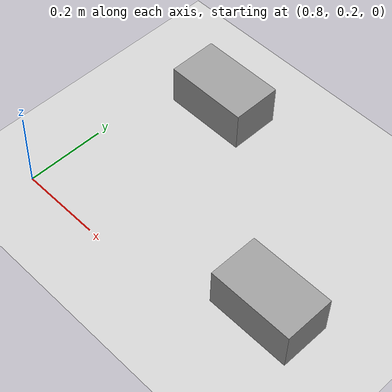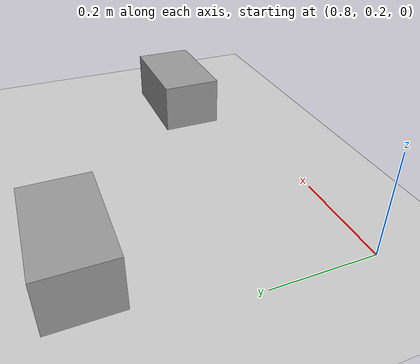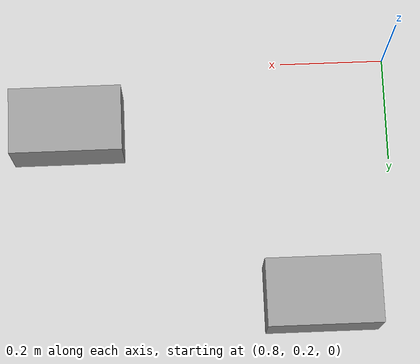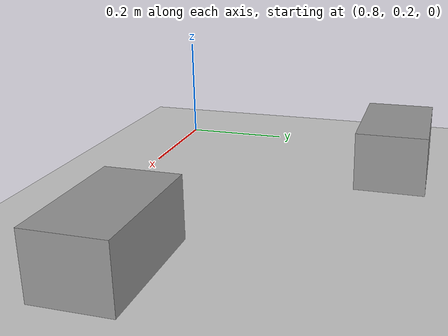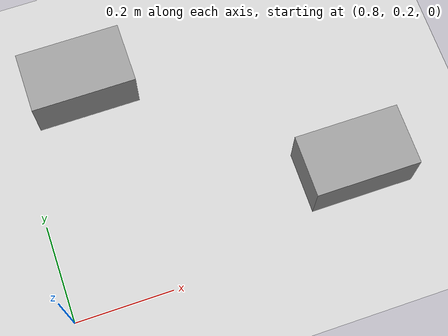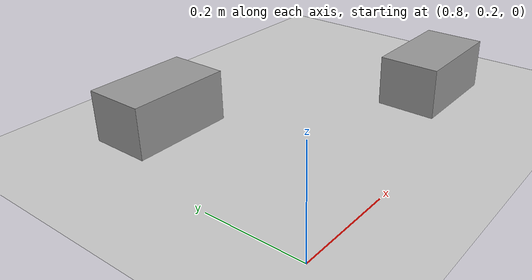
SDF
<sdf version="1.7">
 <world name="default">
  <light name="sun" type="directional">
   <pose>0 0 10 0 -0 0</pose>
   <diffuse>0.8 0.8 0.8 1</diffuse>
   <specular>0.2 0.2 0.2 1</specular>
   <attenuation>
    <range>1000</range>
    <constant>0.9</constant>
    <linear>0.01</linear>
    <quadratic>0.001</quadratic>
   </attenuation>
   <direction>-0.5 0.1 -0.9</direction>
   <spot><inner_angle>0</inner_angle><outer_angle>0</outer_angle><falloff>0</falloff></spot>
  </light>
  <model name="ground_plane">
   <static>1</static>
   <link name="link">
    <collision name="collision">
     <geometry><plane><normal>0 0 1</normal><size>100 100</size></plane></geometry>
     <surface>
      <contact><collide_bitmask>65535</collide_bitmask></contact>
      <friction><ode><mu>100</mu><mu2>50</mu2></ode></friction>
     </surface>
    </collision>
    <visual name="visual">
     <cast_shadows>0</cast_shadows>
     <geometry><plane><normal>0 0 1</normal><size>100 100</size></plane></geometry>
     <material>
      <script><uri>file://media/materials/scripts/gazebo.material</uri><name>Gazebo/Grey</name></script>
     </material>
    </visual>
   </link>
  </model>
  <gravity>0 0 -9.8</gravity>
  <magnetic_field>6e-06 2.3e-05 -4.2e-05</magnetic_field>
  <atmosphere type="adiabatic"/>
  <physics type="ode">
   <max_step_size>0.001</max_step_size>
   <real_time_factor>1</real_time_factor>
   <real_time_update_rate>1000</real_time_update_rate>
  </physics>
  <scene><ambient>0.4 0.4 0.4 1</ambient><background>0.7 0.7 0.7 1</background><shadows>1</shadows></scene>
  <spherical_coordinates>
   <surface_model>EARTH_WGS84</surface_model>
   <latitude_deg>0</latitude_deg>
   <longitude_deg>0</longitude_deg>
   <elevation>0</elevation>
   <heading_deg>0</heading_deg>
  </spherical_coordinates>
  <model name="unit_box_0_clone_clone">
   <pose>0.949676 0.666683 0.052427 -0 -1e-06 0.000713</pose>
   <link name="link">
    <inertial>
     <mass>1</mass>
     <inertia>
      <ixx>0.166667</ixx>
      <ixy>0</ixy>
      <ixz>0</ixz>
      <iyy>0.166667</iyy>
      <iyz>0</iyz>
      <izz>0.166667</izz>
     </inertia>
    </inertial>
    <collision name="collision">
     <geometry><box><size>0.211777 0.125277 0.104873</size></box></geometry>
    </collision>
    <visual name="visual">
     <geometry><box><size>0.211777 0.125277 0.104873</size></box></geometry>
     <material>
      <script><name>Gazebo/Grey</name><uri>file://media/materials/scripts/gazebo.material</uri></script>
     </material>
    </visual>
   </link>
  </model>
  <model name="unit_box_0_clone_clone_clone_0">
   <pose>1.41655 0.325834 0.052436 0 1e-06 0.000712</pose>
   <link name="link">
    <inertial>
     <mass>1</mass>
     <inertia>
      <ixx>0.166667</ixx>
      <ixy>0</ixy>
      <ixz>0</ixz>
      <iyy>0.166667</iyy>
      <iyz>0</iyz>
      <izz>0.166667</izz>
     </inertia>
    </inertial>
    <collision name="collision">
     <geometry><box><size>0.211777 0.125277 0.104873</size></box></geometry>
    </collision>
    <visual name="visual">
     <geometry><box><size>0.211777 0.125277 0.104873</size></box></geometry>
     <material>
      <script><name>Gazebo/Grey</name><uri>file://media/materials/scripts/gazebo.material</uri></script>
     </material>
    </visual>
   </link>
  </model>
 </world>
</sdf>
